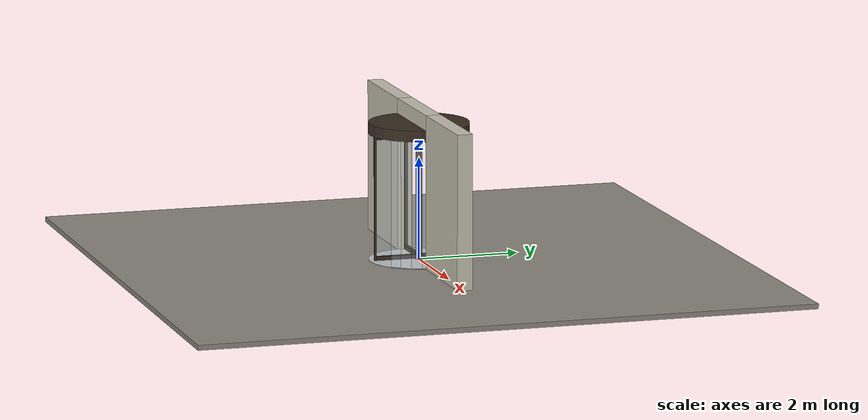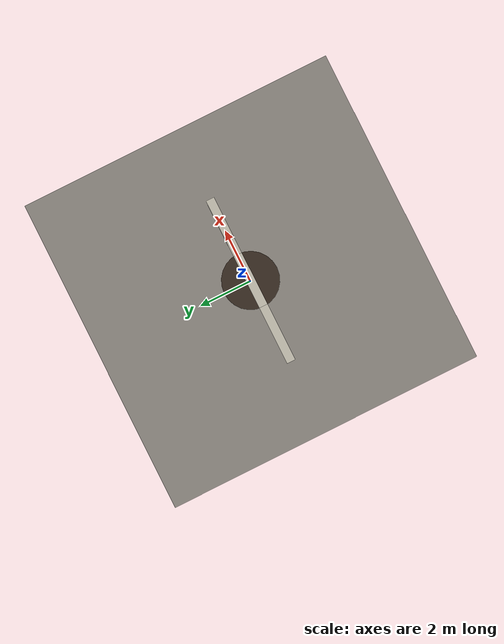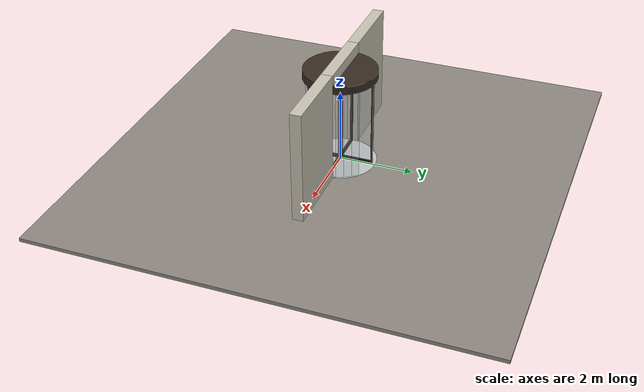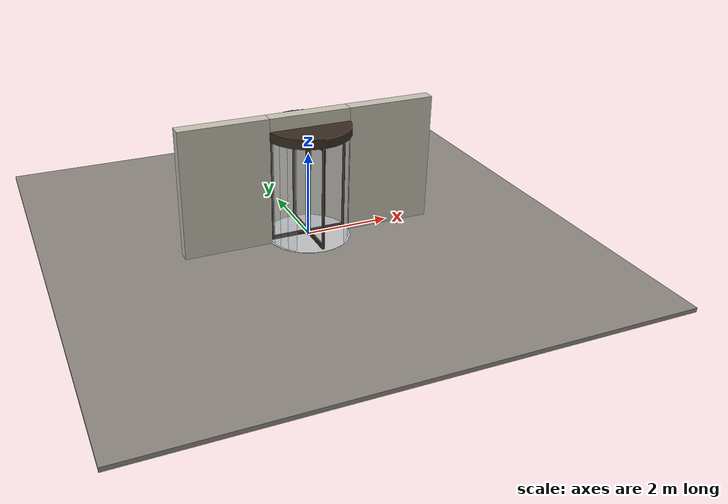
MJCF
<?xml version="1.0" ?>
<mujoco model="db0552_revolving_full">
  <compiler angle="radian" meshdir="../../hardware" texturedir="../../textures" autolimits="true" inertiafromgeom="false"/>
  <option timestep="0.002" integrator="implicitfast" cone="elliptic" impratio="10" noslip_iterations="3">
    <flag multiccd="enable"/>
  </option>
  <size memory="16M"/>
  <default>
    <geom condim="4" solref="0.005 1" solimp="0.95 0.99 0.001"/>
    <joint solreflimit="0.005 1" solimplimit="0.95 0.99 0.001"/>
    <tendon solreflimit="0.005 1"/>
    <equality solref="0.002 1"/>
  </default>
  <visual>
    <headlight ambient="0.4 0.4 0.4" diffuse="0.7 0.7 0.7" specular="0.2 0.2 0.2"/>
    <quality shadowsize="4096"/>
    <map znear="0.01" zfar="60"/>
  </visual>
  <asset>
    <material name="mat_floor" rgba="0.55 0.53 0.5 1" specular="0.2" shininess="0.15" reflectance="0"/>
    <material name="mat_wall" rgba="0.78 0.76 0.7 1" specular="0.2" shininess="0.1" reflectance="0"/>
    <material name="mat_frame" rgba="0.22 0.17 0.13 1" specular="0.8" shininess="0.6" reflectance="0.4"/>
    <material name="mat_drum_glass" rgba="0.85 0.92 0.95 0.25" specular="0.2" shininess="0.95" reflectance="0.1"/>
    <material name="mat_floor_ring" rgba="0.75 0.76 0.77 1" specular="0.8" shininess="0.65" reflectance="0.4"/>
    <texture name="skybox" type="skybox" builtin="gradient" rgb1="0.6 0.7 0.85" rgb2="0.9 0.92 0.95" width="256" height="256"/>
  </asset>
  <worldbody>
    <light name="sun" pos="1.5 -2.5 4" dir="-0.3 0.5 -0.8" directional="true" diffuse="0.8 0.8 0.8" specular="0.3 0.3 0.3" castshadow="true"/>
    <light name="fill" pos="-1.5 2.5 3" dir="0.3 -0.5 -0.7" directional="true" diffuse="0.35 0.35 0.4" castshadow="false"/>
    <camera name="robot_view" pos="0 -3.15625 2.23375" xyaxes="1 0 0 0 0.26963 0.962964" fovy="52"/>
    <camera name="far_view" pos="0 3.15625 2.23375" xyaxes="-1 0 0 0 -0.26963 0.962964" fovy="52"/>
    <camera name="iso" pos="2.39875 -2.65125 2.73875" xyaxes="0.741536 0.670913 0 -0.242917 0.268487 0.932151" fovy="46"/>
    <camera name="detail_handle" pos="0.55 -1.1 1.35" xyaxes="0.975133 0.221621 0 -0.065674 0.288965 0.955084" fovy="38"/>
    <geom name="floor" type="box" size="6 6 0.05" pos="0 0 -0.05" material="mat_floor" group="0" contype="1" conaffinity="1" friction="0.8 0.005 0.0001" density="2400"/>
    <geom name="wall_left" type="box" size="1.025 0.15 1.5" pos="-1.975 0 1.5" material="mat_wall" group="0" contype="1" conaffinity="1" friction="0.6 0.005 0.0001" density="800"/>
    <geom name="wall_right" type="box" size="1.025 0.15 1.5" pos="1.975 0 1.5" material="mat_wall" group="0" contype="1" conaffinity="1" friction="0.6 0.005 0.0001" density="800"/>
    <geom name="wall_header" type="box" size="0.95 0.15 0.15" pos="0 0 2.85" material="mat_wall" group="0" contype="1" conaffinity="1" friction="0.6 0.005 0.0001" density="800"/>
    <geom name="drum_0" type="box" size="0.105224 0.006 1.2425" pos="0.914215 0.103007 1.2425" quat="0.666347 0 0 0.745642" material="mat_drum_glass" group="0" contype="1" conaffinity="1" friction="0.6 0.005 0.0001" density="2500"/>
    <geom name="drum_1" type="box" size="0.105224 0.006 1.2425" pos="0.868373 0.303857 1.2425" quat="0.578671 0 0 0.815561" material="mat_drum_glass" group="0" contype="1" conaffinity="1" friction="0.6 0.005 0.0001" density="2500"/>
    <geom name="drum_2" type="box" size="0.105224 0.006 1.2425" pos="0.778986 0.48947 1.2425" quat="0.483719 0 0 0.875223" material="mat_drum_glass" group="0" contype="1" conaffinity="1" friction="0.6 0.005 0.0001" density="2500"/>
    <geom name="drum_3" type="box" size="0.105224 0.006 1.2425" pos="0.650538 0.650538 1.2425" quat="0.382683 0 0 0.92388" material="mat_drum_glass" group="0" contype="1" conaffinity="1" friction="0.6 0.005 0.0001" density="2500"/>
    <geom name="drum_10" type="box" size="0.105224 0.006 1.2425" pos="-0.650538 0.650538 1.2425" quat="-0.382683 0 0 0.92388" material="mat_drum_glass" group="0" contype="1" conaffinity="1" friction="0.6 0.005 0.0001" density="2500"/>
    <geom name="drum_11" type="box" size="0.105224 0.006 1.2425" pos="-0.778986 0.48947 1.2425" quat="-0.483719 0 0 0.875223" material="mat_drum_glass" group="0" contype="1" conaffinity="1" friction="0.6 0.005 0.0001" density="2500"/>
    <geom name="drum_12" type="box" size="0.105224 0.006 1.2425" pos="-0.868373 0.303857 1.2425" quat="-0.578671 0 0 0.815561" material="mat_drum_glass" group="0" contype="1" conaffinity="1" friction="0.6 0.005 0.0001" density="2500"/>
    <geom name="drum_13" type="box" size="0.105224 0.006 1.2425" pos="-0.914215 0.103007 1.2425" quat="-0.666347 0 0 0.745642" material="mat_drum_glass" group="0" contype="1" conaffinity="1" friction="0.6 0.005 0.0001" density="2500"/>
    <geom name="drum_14" type="box" size="0.105224 0.006 1.2425" pos="-0.914215 -0.103007 1.2425" quat="-0.745642 0 0 0.666347" material="mat_drum_glass" group="0" contype="1" conaffinity="1" friction="0.6 0.005 0.0001" density="2500"/>
    <geom name="drum_15" type="box" size="0.105224 0.006 1.2425" pos="-0.868373 -0.303857 1.2425" quat="-0.815561 0 0 0.578671" material="mat_drum_glass" group="0" contype="1" conaffinity="1" friction="0.6 0.005 0.0001" density="2500"/>
    <geom name="drum_16" type="box" size="0.105224 0.006 1.2425" pos="-0.778986 -0.48947 1.2425" quat="-0.875223 0 0 0.483719" material="mat_drum_glass" group="0" contype="1" conaffinity="1" friction="0.6 0.005 0.0001" density="2500"/>
    <geom name="drum_17" type="box" size="0.105224 0.006 1.2425" pos="-0.650538 -0.650538 1.2425" quat="-0.92388 0 0 0.382683" material="mat_drum_glass" group="0" contype="1" conaffinity="1" friction="0.6 0.005 0.0001" density="2500"/>
    <geom name="drum_24" type="box" size="0.105224 0.006 1.2425" pos="0.650538 -0.650538 1.2425" quat="-0.92388 0 0 -0.382683" material="mat_drum_glass" group="0" contype="1" conaffinity="1" friction="0.6 0.005 0.0001" density="2500"/>
    <geom name="drum_25" type="box" size="0.105224 0.006 1.2425" pos="0.778986 -0.48947 1.2425" quat="-0.875223 0 0 -0.483719" material="mat_drum_glass" group="0" contype="1" conaffinity="1" friction="0.6 0.005 0.0001" density="2500"/>
    <geom name="drum_26" type="box" size="0.105224 0.006 1.2425" pos="0.868373 -0.303857 1.2425" quat="-0.815561 0 0 -0.578671" material="mat_drum_glass" group="0" contype="1" conaffinity="1" friction="0.6 0.005 0.0001" density="2500"/>
    <geom name="drum_27" type="box" size="0.105224 0.006 1.2425" pos="0.914215 -0.103007 1.2425" quat="-0.745642 0 0 -0.666347" material="mat_drum_glass" group="0" contype="1" conaffinity="1" friction="0.6 0.005 0.0001" density="2500"/>
    <geom name="drum_canopy" type="cylinder" size="0.98 0.1075" pos="0 0 2.5925" material="mat_frame" group="0" contype="1" conaffinity="1" friction="0.6 0.005 0.0001" density="300"/>
    <geom name="rotor_top_bearing" type="cylinder" size="0.075 0.003" pos="0 0 2.482" material="mat_frame" group="0" contype="1" conaffinity="1" friction="0.6 0.005 0.0001" density="2700"/>
    <geom name="drum_floor_ring" type="cylinder" size="0.98 0.003" pos="0 0 0.003" material="mat_floor_ring" group="1" contype="0" conaffinity="0" density="7900"/>
    <geom name="rotor_floor_pivot" type="cylinder" size="0.075 0.003" pos="0 0 0.009" material="mat_frame" group="0" contype="1" conaffinity="1" friction="0.6 0.005 0.0001" density="2700"/>
    <site name="approach_point" pos="0 -1.9 0" quat="1 0 0 0" size="0.05" rgba="0.2 0.9 0.2 0.5" group="4"/>
    <site name="goal_point" pos="0 1.9 0" quat="1 0 0 0" size="0.05" rgba="0.2 0.9 0.2 0.5" group="4"/>
    <site name="door_plane_center" pos="0 0 1.2" quat="1 0 0 0" size="0.02" rgba="0.2 0.9 0.2 0.5" group="4"/>
    <body name="rotor" pos="0 0 0">
      <inertial pos="0 0 1.247472" mass="211.35" quat="0.707107 0 0.707107 0" diaginertia="61.122426832 168.407642591 168.407642591"/>
      <joint name="rotor_hinge" type="hinge" axis="0 0 1" limited="false" damping="23" frictionloss="4.599502" armature="0.5"/>
      <geom name="rotor_shaft" type="cylinder" size="0.06 1.225" pos="0 0 1.245" material="mat_frame" group="0" contype="1" conaffinity="1" friction="0.6 0.005 0.0001" density="2700"/>
      <geom name="rotor_pintle_b" type="cylinder" size="0.03 0.008" pos="0 0 0.016" material="mat_frame" group="1" contype="0" conaffinity="0" density="2700"/>
      <geom name="rotor_pintle_t" type="cylinder" size="0.03 0.0085" pos="0 0 2.4745" material="mat_frame" group="1" contype="0" conaffinity="0" density="2700"/>
      <geom name="wing_0_glass" type="box" size="0.43 0.005 1.15" pos="0.45 0 1.25" material="mat_drum_glass" group="0" contype="1" conaffinity="1" friction="0.6 0.005 0.0001" density="2500"/>
      <geom name="wing_0_stile" type="box" size="0.02 0.03 1.225" pos="0.88 0 1.245" material="mat_frame" group="0" contype="1" conaffinity="1" friction="0.6 0.005 0.0001" density="2700"/>
      <geom name="wing_0_rail_b" type="box" size="0.43 0.03 0.04" pos="0.43 0 0.06" material="mat_frame" group="0" contype="1" conaffinity="1" friction="0.6 0.005 0.0001" density="2700"/>
      <geom name="wing_0_rail_t" type="box" size="0.43 0.03 0.04" pos="0.43 0 2.43" material="mat_frame" group="0" contype="1" conaffinity="1" friction="0.6 0.005 0.0001" density="2700"/>
      <geom name="wing_1_glass" type="box" size="0.43 0.005 1.15" pos="0 0.45 1.25" quat="0.707107 0 0 0.707107" material="mat_drum_glass" group="0" contype="1" conaffinity="1" friction="0.6 0.005 0.0001" density="2500"/>
      <geom name="wing_1_stile" type="box" size="0.02 0.03 1.225" pos="0 0.88 1.245" quat="0.707107 0 0 0.707107" material="mat_frame" group="0" contype="1" conaffinity="1" friction="0.6 0.005 0.0001" density="2700"/>
      <geom name="wing_1_rail_b" type="box" size="0.43 0.03 0.04" pos="0 0.43 0.06" quat="0.707107 0 0 0.707107" material="mat_frame" group="0" contype="1" conaffinity="1" friction="0.6 0.005 0.0001" density="2700"/>
      <geom name="wing_1_rail_t" type="box" size="0.43 0.03 0.04" pos="0 0.43 2.43" quat="0.707107 0 0 0.707107" material="mat_frame" group="0" contype="1" conaffinity="1" friction="0.6 0.005 0.0001" density="2700"/>
      <geom name="wing_2_glass" type="box" size="0.43 0.005 1.15" pos="-0.45 0 1.25" quat="0 0 0 1" material="mat_drum_glass" group="0" contype="1" conaffinity="1" friction="0.6 0.005 0.0001" density="2500"/>
      <geom name="wing_2_stile" type="box" size="0.02 0.03 1.225" pos="-0.88 0 1.245" quat="0 0 0 1" material="mat_frame" group="0" contype="1" conaffinity="1" friction="0.6 0.005 0.0001" density="2700"/>
      <geom name="wing_2_rail_b" type="box" size="0.43 0.03 0.04" pos="-0.43 0 0.06" quat="0 0 0 1" material="mat_frame" group="0" contype="1" conaffinity="1" friction="0.6 0.005 0.0001" density="2700"/>
      <geom name="wing_2_rail_t" type="box" size="0.43 0.03 0.04" pos="-0.43 0 2.43" quat="0 0 0 1" material="mat_frame" group="0" contype="1" conaffinity="1" friction="0.6 0.005 0.0001" density="2700"/>
      <geom name="wing_3_glass" type="box" size="0.43 0.005 1.15" pos="0 -0.45 1.25" quat="-0.707107 0 0 0.707107" material="mat_drum_glass" group="0" contype="1" conaffinity="1" friction="0.6 0.005 0.0001" density="2500"/>
      <geom name="wing_3_stile" type="box" size="0.02 0.03 1.225" pos="0 -0.88 1.245" quat="-0.707107 0 0 0.707107" material="mat_frame" group="0" contype="1" conaffinity="1" friction="0.6 0.005 0.0001" density="2700"/>
      <geom name="wing_3_rail_b" type="box" size="0.43 0.03 0.04" pos="0 -0.43 0.06" quat="-0.707107 0 0 0.707107" material="mat_frame" group="0" contype="1" conaffinity="1" friction="0.6 0.005 0.0001" density="2700"/>
      <geom name="wing_3_rail_t" type="box" size="0.43 0.03 0.04" pos="0 -0.43 2.43" quat="-0.707107 0 0 0.707107" material="mat_frame" group="0" contype="1" conaffinity="1" friction="0.6 0.005 0.0001" density="2700"/>
    </body>
  </worldbody>
  <sensor>
    <jointpos name="rotor_hinge_pos" joint="rotor_hinge"/>
    <jointvel name="rotor_hinge_vel" joint="rotor_hinge"/>
  </sensor>
</mujoco>
